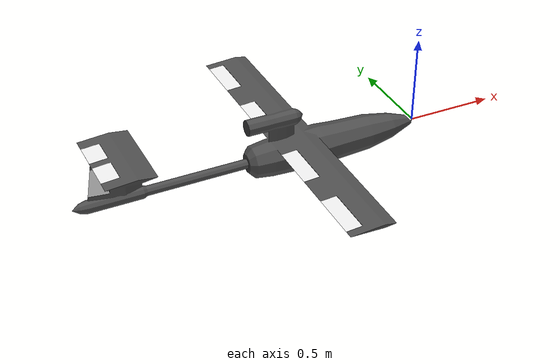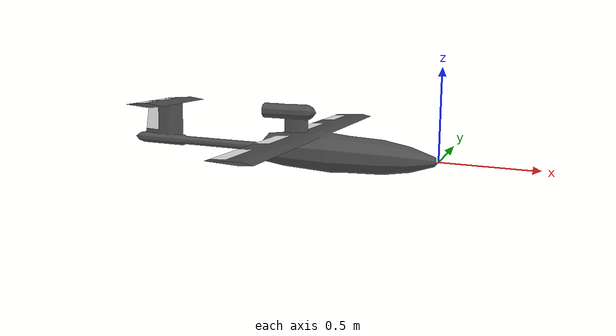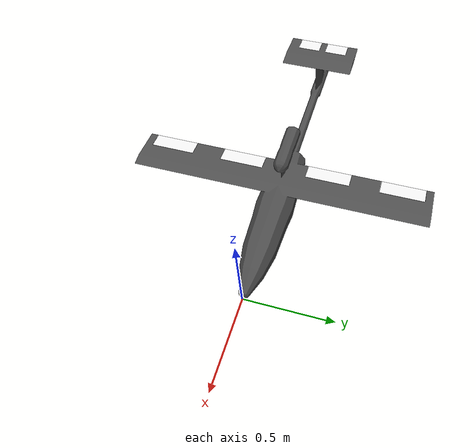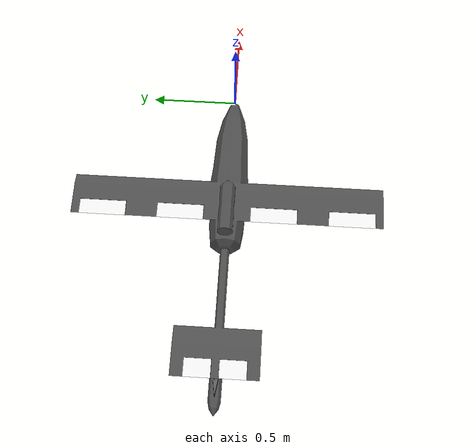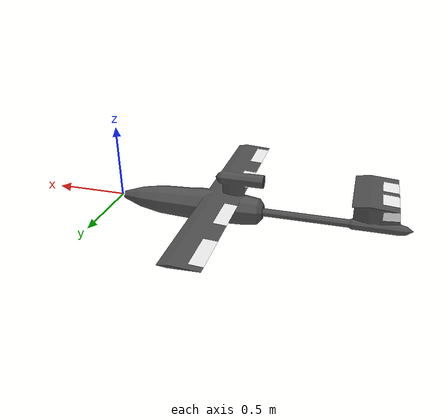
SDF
<?xml version='1.0'?>
<sdf version='1.6'>
  <model name="SAILR">

    <link name='airframe'>
      <inertial>
        <pose>8 0 0 0 0 0</pose>
      </inertial>
      <collision name='collision'>
        <geometry>
          <mesh>
            <uri>model://UAV_Model1/meshes/stl/airframe.stl</uri>
          </mesh>
        </geometry>
      </collision>
      <visual name='visual'>
        <cast_shadows>0</cast_shadows>
        <geometry>
          <mesh>
            <uri>model://UAV_Model1/meshes/stl/airframe.stl</uri>
          </mesh>
        </geometry>
        <material>
          <script>
            <name>Gazebo/DarkGrey</name>
          </script>
        </material>
      </visual>
    </link>

    <link name='left_aileron'>
      <kinematic>true</kinematic>
      <gravity>false</gravity>
      <visual name='visual'>
        <cast_shadows>0</cast_shadows>
        <geometry>
          <mesh>
            <uri>model://UAV_Model1/meshes/stl/left_aileron.stl</uri>
          </mesh>
        </geometry>
        <material>
          <script>
            <name>Gazebo/White</name>
          </script>
        </material>
      </visual>

    </link>

    <joint name='left_aileron' type='revolute'>
      <child>left_aileron</child>
      <parent>airframe</parent>
      <pose>-9.8 2.5 0 0 0 0</pose>
      <axis>
        <xyz>0 1 0</xyz>
        <limit>
          <lower>-1</lower>
          <upper>1</upper>
        </limit>
      </axis>
    </joint>

    <link name='right_aileron'>
      <kinematic>true</kinematic>
      <gravity>false</gravity>
      <visual name='visual'>
        <cast_shadows>0</cast_shadows>
        <geometry>
          <mesh>
            <uri>model://UAV_Model1/meshes/stl/right_aileron.stl</uri>
          </mesh>
        </geometry>
        <material>
          <script>
            <name>Gazebo/White</name>
          </script>
        </material>
      </visual>
    </link>

    <joint name='right_aileron' type='revolute'>
      <child>right_aileron</child>
      <parent>airframe</parent>
      <pose>-9.8 -2.5 0 0 0 0</pose>
      <axis>
        <xyz>0 1 0</xyz>
        <limit>
          <lower>-1</lower>
          <upper>1</upper>
        </limit>
      </axis>
    </joint>

    <link name='left_flap'>
      <kinematic>true</kinematic>
      <gravity>false</gravity>
      <visual name='visual'>
        <cast_shadows>0</cast_shadows>
        <geometry>
          <mesh>
            <uri>model://UAV_Model1/meshes/stl/left_flap.stl</uri>
          </mesh>
        </geometry>
        <material>
          <script>
            <name>Gazebo/White</name>
          </script>
        </material>
      </visual>

    </link>

    <joint name='left_flap' type='revolute'>
      <child>left_flap</child>
      <parent>airframe</parent>
      <pose>-9.8 2.5 0 0 0 0</pose>
      <axis>
        <xyz>0 1 0</xyz>
        <limit>
          <lower>-1</lower>
          <upper>1</upper>
        </limit>
      </axis>
    </joint>

    <link name='right_flap'>
      <kinematic>true</kinematic>
      <gravity>false</gravity>
      <visual name='visual'>
        <cast_shadows>0</cast_shadows>
        <geometry>
          <mesh>
            <uri>model://UAV_Model1/meshes/stl/right_flap.stl</uri>
          </mesh>
        </geometry>
        <material>
          <script>
            <name>Gazebo/White</name>
          </script>
        </material>
      </visual>
    </link>

    <joint name='right_flap' type='revolute'>
      <child>right_flap</child>
      <parent>airframe</parent>
      <pose>-9.8 -2.5 0 0 0 0</pose>
      <axis>
        <xyz>0 1 0</xyz>
        <limit>
          <lower>-1</lower>
          <upper>1</upper>
        </limit>
      </axis>
    </joint>

    <link name='rudder'>
      <kinematic>true</kinematic>
      <gravity>false</gravity>
      <visual name='visual'>
        <cast_shadows>0</cast_shadows>
        <geometry>
          <mesh>
            <uri>model://UAV_Model1/meshes/stl/rudder.stl</uri>
          </mesh>
        </geometry>
        <material>
          <script>
            <name>Gazebo/White</name>
          </script>
        </material>
      </visual>

    </link>

    <joint name='rudder' type='revolute'>
      <child>rudder</child>
      <parent>airframe</parent>
      <pose>-13.5 0 0 0 0 0</pose>
      <axis>
        <xyz>0 0 1</xyz>
        <limit>
          <lower>-1</lower>
          <upper>1</upper>
        </limit>
      </axis>
    </joint>

    <link name='left_elevator'>
      <kinematic>true</kinematic>
      <gravity>false</gravity>
      <visual name='visual'>
        <cast_shadows>0</cast_shadows>
        <geometry>
          <mesh>
            <uri>model://UAV_Model1/meshes/stl/left_elevator.stl</uri>
          </mesh>
        </geometry>
        <material>
          <script>
            <name>Gazebo/White</name>
          </script>
        </material>
      </visual>

    </link>

    <joint name='left_elevator' type='revolute'>
      <child>left_elevator</child>
      <parent>airframe</parent>
      <pose>-12.5 1 0 0 0 0</pose>
      <axis>
        <xyz>0 1 0</xyz>
        <limit>
          <lower>-1</lower>
          <upper>1</upper>
        </limit>
      </axis>
    </joint>

    <link name='right_elevator'>
      <kinematic>true</kinematic>
      <gravity>false</gravity>
      <visual name='visual'>
        <cast_shadows>0</cast_shadows>
        <geometry>
          <mesh>
            <uri>model://UAV_Model1/meshes/stl/right_elevator.stl</uri>
          </mesh>
        </geometry>
        <material>
          <script>
            <name>Gazebo/White</name>
          </script>
        </material>
      </visual>

    </link>

    <joint name='right_elevator' type='revolute'>
      <child>right_elevator</child>
      <parent>airframe</parent>
      <pose>-12.5 -1 0 0 0 0</pose>
      <axis>
        <xyz>0 1 0</xyz>
        <limit>
          <lower>-1</lower>
          <upper>1</upper>
        </limit>
      </axis>
    </joint>

  </model>
</sdf>

<!-- vim: set et fenc=utf-8 ft=xml ff=unix sts=0 sw=2 ts=2 : -->
